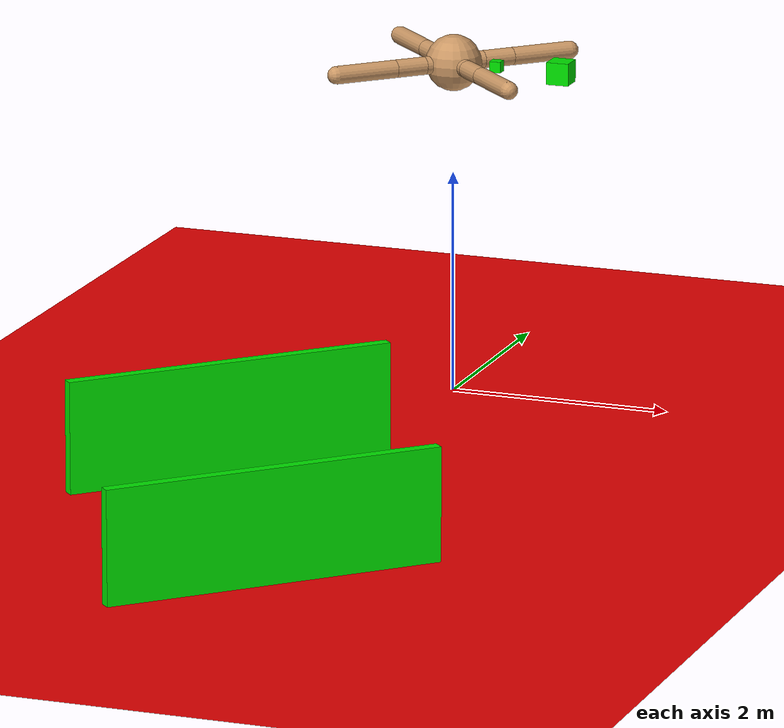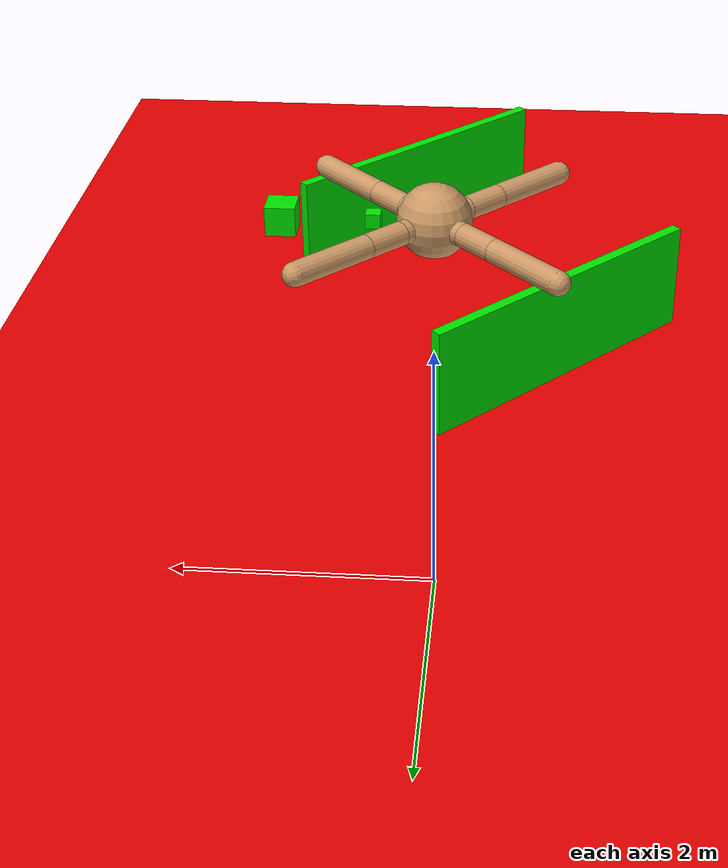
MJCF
<mujoco model="ant">
  <custom>
    <numeric data="0.0 0.0 0.55 1.0 0.0 0.0 0.0 0.0 1.0 0.0 -1.0 0.0 -1.0 0.0 1.0" name="init_qpos"/>
  </custom>
  <default>
    <joint armature="1" damping="1" limited="true"/>
    <geom conaffinity="0" condim="3" density="5.0" friction="1 0.5 0.5" margin="0.01" rgba="0.8 0.6 0.4 1"/>
  </default>
  <asset>
    <texture builtin="gradient" height="100" rgb1="1 1 1" rgb2="0 0 0" type="skybox" width="100"/>
    <texture builtin="flat" height="1278" mark="cross" markrgb="1 1 1" name="texgeom" random="0.01" rgb1="0.8 0.6 0.4" rgb2="0.8 0.6 0.4" type="cube" width="127"/>
    <texture builtin="checker" height="100" name="texplane" rgb1="0 0 0" rgb2="0.8 0.8 0.8" type="2d" width="100"/>
    <material name="MatPlane" reflectance="0.5" shininess="1" specular="1" texrepeat="60 60" texture="texplane"/>
    <material name="geom" texture="texgeom" texuniform="true"/>
  </asset>
  <worldbody>
    <light diffuse=".5 .5 .5" pos="0 0 3" dir="0 0 -1" />
    <geom conaffinity="1" condim="3" type="plane" size="40 40 1.110223E-16" rgba=".9 0 0 1" />
    <body pos="-0.934 -3.053 .488" name="TestAngle" euler="0 0 45">
      <geom conaffinity="1" condim="3" type="box" size="1.5 0.05 0.5" rgba="0 .9 0 1" name="TestBox"/>
      <body pos="-0.934 -3.053 0" name="Test2">
        <geom conaffinity="1" condim="3" type="box" size="1.5 0.05 0.5" rgba="0 .9 0 1" name="Test2Box"/>
      </body>
    </body>
    <body name="torso" pos="0 0 3">
      <camera name="track" mode="trackcom" pos="0 -3 0.3" xyaxes="1 0 0 0 0 1"/>
      <site name="box_range" type="box" pos="0.4 0 0" size=".05 .05 .05" rgba="0 .9 0 1" euler="0 90 0"/>
      <geom name="Test" type="box" size=".1 .1 .1" rgba="0 .9 0 1" pos="1 0 0"/>
      <geom name="torso_geom" pos="0 0 0" size="0.25" type="sphere"/>
      <joint armature="0" damping="0" limited="false" margin="0.01" name="root" pos="0 0 0" type="free"/>
      <body name="front_left_leg" pos="0 0 0">
        <geom fromto="0.0 0.0 0.0 0.2 0.2 0.0" name="aux_1_geom" size="0.08" type="capsule"/>
        <body name="aux_1" pos="0.2 0.2 0">
          <joint axis="0 0 1" name="hip_1" pos="0.0 0.0 0.0" range="-30 30" type="hinge"/>
          <geom fromto="0.0 0.0 0.0 0.2 0.2 0.0" name="left_leg_geom" size="0.08" type="capsule"/>
          <body pos="0.2 0.2 0">
            <joint axis="-1 1 0" name="ankle_1" pos="0.0 0.0 0.0" range="30 70" type="hinge"/>
            <geom fromto="0.0 0.0 0.0 0.4 0.4 0.0" name="left_ankle_geom" size="0.08" type="capsule"/>
          </body>
        </body>
      </body>
      <body name="front_right_leg" pos="0 0 0">
        <geom fromto="0.0 0.0 0.0 -0.2 0.2 0.0" name="aux_2_geom" size="0.08" type="capsule"/>
        <body name="aux_2" pos="-0.2 0.2 0">
          <joint axis="0 0 1" name="hip_2" pos="0.0 0.0 0.0" range="-30 30" type="hinge"/>
          <geom fromto="0.0 0.0 0.0 -0.2 0.2 0.0" name="right_leg_geom" size="0.08" type="capsule"/>
          <body pos="-0.2 0.2 0">
            <joint axis="1 1 0" name="ankle_2" pos="0.0 0.0 0.0" range="-70 -30" type="hinge"/>
            <geom fromto="0.0 0.0 0.0 -0.4 0.4 0.0" name="right_ankle_geom" size="0.08" type="capsule"/>
          </body>
        </body>
      </body>
      <body name="back_leg" pos="0 0 0">
        <geom fromto="0.0 0.0 0.0 -0.2 -0.2 0.0" name="aux_3_geom" size="0.08" type="capsule"/>
        <body name="aux_3" pos="-0.2 -0.2 0">
          <joint axis="0 0 1" name="hip_3" pos="0.0 0.0 0.0" range="-30 30" type="hinge"/>
          <geom fromto="0.0 0.0 0.0 -0.2 -0.2 0.0" name="back_leg_geom" size="0.08" type="capsule"/>
          <body pos="-0.2 -0.2 0">
            <joint axis="-1 1 0" name="ankle_3" pos="0.0 0.0 0.0" range="-70 -30" type="hinge"/>
            <geom fromto="0.0 0.0 0.0 -0.4 -0.4 0.0" name="third_ankle_geom" size="0.08" type="capsule"/>
          </body>
        </body>
      </body>
      <body name="right_back_leg" pos="0 0 0">
        <geom fromto="0.0 0.0 0.0 0.2 -0.2 0.0" name="aux_4_geom" size="0.08" type="capsule"/>
        <body name="aux_4" pos="0.2 -0.2 0">
          <joint axis="0 0 1" name="hip_4" pos="0.0 0.0 0.0" range="-30 30" type="hinge"/>
          <geom fromto="0.0 0.0 0.0 0.2 -0.2 0.0" name="rightback_leg_geom" size="0.08" type="capsule"/>
          <body pos="0.2 -0.2 0">
            <joint axis="1 1 0" name="ankle_4" pos="0.0 0.0 0.0" range="30 70" type="hinge"/>
            <geom fromto="0.0 0.0 0.0 0.4 -0.4 0.0" name="fourth_ankle_geom" size="0.08" type="capsule"/>
          </body>
        </body>
      </body>
    </body>
  </worldbody>
  <actuator>
    <motor ctrllimited="true" ctrlrange="-1.0 1.0" joint="hip_4" gear="150"/>
    <motor ctrllimited="true" ctrlrange="-1.0 1.0" joint="ankle_4" gear="150"/>
    <motor ctrllimited="true" ctrlrange="-1.0 1.0" joint="hip_1" gear="150"/>
    <motor ctrllimited="true" ctrlrange="-1.0 1.0" joint="ankle_1" gear="150"/>
    <motor ctrllimited="true" ctrlrange="-1.0 1.0" joint="hip_2" gear="150"/>
    <motor ctrllimited="true" ctrlrange="-1.0 1.0" joint="ankle_2" gear="150"/>
    <motor ctrllimited="true" ctrlrange="-1.0 1.0" joint="hip_3" gear="150"/>
    <motor ctrllimited="true" ctrlrange="-1.0 1.0" joint="ankle_3" gear="150"/>
  </actuator>

  <sensor>
        <rangefinder name="box1" site="box_range" cutoff="20"/>
        <frameyaxis name="yAxis" objtype="site" objname="box_range"/>
    </sensor>
</mujoco>
